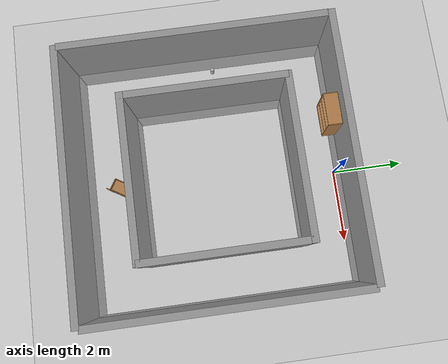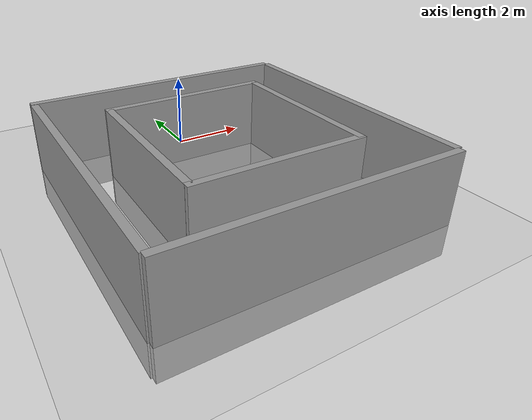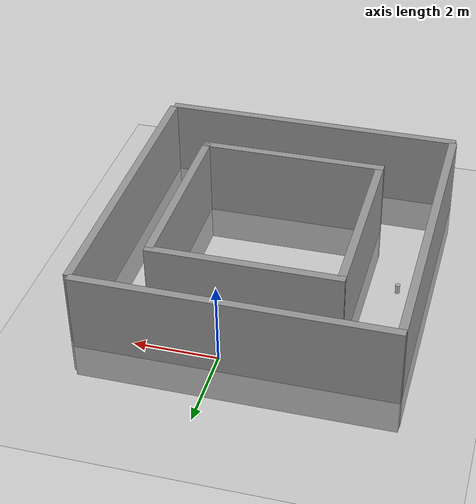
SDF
<sdf version="1.7">
 <world name="default">
  <light name="sun" type="directional">
   <pose>0 0 10 0 -0 0</pose>
   <diffuse>0.8 0.8 0.8 1</diffuse>
   <specular>0.2 0.2 0.2 1</specular>
   <attenuation>
    <range>1000</range>
    <constant>0.9</constant>
    <linear>0.01</linear>
    <quadratic>0.001</quadratic>
   </attenuation>
   <direction>-0.5 0.1 -0.9</direction>
   <spot><inner_angle>0</inner_angle><outer_angle>0</outer_angle><falloff>0</falloff></spot>
  </light>
  <model name="ground_plane">
   <static>1</static>
   <link name="link">
    <collision name="collision">
     <geometry><plane><normal>0 0 1</normal><size>100 100</size></plane></geometry>
     <surface>
      <contact><collide_bitmask>65535</collide_bitmask></contact>
      <friction><ode><mu>100</mu><mu2>50</mu2></ode></friction>
     </surface>
    </collision>
    <visual name="visual">
     <cast_shadows>0</cast_shadows>
     <geometry><plane><normal>0 0 1</normal><size>100 100</size></plane></geometry>
     <material>
      <script><uri>file://media/materials/scripts/gazebo.material</uri><name>Gazebo/Grey</name></script>
     </material>
    </visual>
   </link>
  </model>
  <gravity>0 0 -9.8</gravity>
  <magnetic_field>6e-06 2.3e-05 -4.2e-05</magnetic_field>
  <atmosphere type="adiabatic"/>
  <physics type="ode">
   <max_step_size>0.001</max_step_size>
   <real_time_factor>1</real_time_factor>
   <real_time_update_rate>1000</real_time_update_rate>
  </physics>
  <scene><ambient>0.4 0.4 0.4 1</ambient><background>0.7 0.7 0.7 1</background><shadows>1</shadows></scene>
  <audio><device>default</device></audio>
  <spherical_coordinates>
   <surface_model>EARTH_WGS84</surface_model>
   <latitude_deg>0</latitude_deg>
   <longitude_deg>0</longitude_deg>
   <elevation>0</elevation>
   <heading_deg>0</heading_deg>
  </spherical_coordinates>
  <model name="grey_wall">
   <static>1</static>
   <link name="link">
    <pose>0 0 1.4 0 -0 0</pose>
    <collision name="collision"><geometry><box><size>7.5 0.2 2.8</size></box></geometry></collision>
    <visual name="visual">
     <cast_shadows>0</cast_shadows>
     <geometry><box><size>7.5 0.2 2.8</size></box></geometry>
     <material>
      <script>
       <uri>model://grey_wall/materials/scripts</uri>
       <uri>model://grey_wall/materials/textures</uri>
       <name>vrc/grey_wall</name>
      </script>
     </material>
    </visual>
   </link>
   <pose>-4.11234 -3.50236 -0.882618 0 -0 1.5708</pose>
  </model>
  <model name="grey_wall_clone">
   <static>1</static>
   <link name="link">
    <pose>0 0 1.4 0 -0 0</pose>
    <collision name="collision"><geometry><box><size>7.5 0.2 2.8</size></box></geometry></collision>
    <visual name="visual">
     <cast_shadows>0</cast_shadows>
     <geometry><box><size>7.5 0.2 2.8</size></box></geometry>
     <material>
      <script>
       <uri>model://grey_wall/materials/scripts</uri>
       <uri>model://grey_wall/materials/textures</uri>
       <name>vrc/grey_wall</name>
      </script>
     </material>
    </visual>
   </link>
   <pose>-0.420642 -7.30869 -0.882618 0 0 -0.000576</pose>
  </model>
  <model name="grey_wall_clone_clone">
   <static>1</static>
   <link name="link">
    <pose>0 0 1.4 0 -0 0</pose>
    <collision name="collision"><geometry><box><size>7.5 0.2 2.8</size></box></geometry></collision>
    <visual name="visual">
     <cast_shadows>0</cast_shadows>
     <geometry><box><size>7.5 0.2 2.8</size></box></geometry>
     <material>
      <script>
       <uri>model://grey_wall/materials/scripts</uri>
       <uri>model://grey_wall/materials/textures</uri>
       <name>vrc/grey_wall</name>
      </script>
     </material>
    </visual>
   </link>
   <pose>-0.448186 0.313004 -0.875702 0 -0 0</pose>
  </model>
  <model name="grey_wall_clone_0">
   <static>1</static>
   <link name="link">
    <pose>0 0 1.4 0 -0 0</pose>
    <collision name="collision"><geometry><box><size>7.5 0.2 2.8</size></box></geometry></collision>
    <visual name="visual">
     <cast_shadows>0</cast_shadows>
     <geometry><box><size>7.5 0.2 2.8</size></box></geometry>
     <material>
      <script>
       <uri>model://grey_wall/materials/scripts</uri>
       <uri>model://grey_wall/materials/textures</uri>
       <name>vrc/grey_wall</name>
      </script>
     </material>
    </visual>
   </link>
   <pose>3.31769 -3.48579 -0.882618 0 -0 1.5708</pose>
  </model>
  <model name="grey_wall_clone_0_clone">
   <link name="link">
    <pose>0 0 1.4 0 -0 0</pose>
    <inertial>
     <inertia><ixx>0</ixx><ixy>0</ixy><ixz>0</ixz><iyy>0</iyy><iyz>0</iyz><izz>0</izz></inertia>
     <mass>0</mass>
    </inertial>
    <visual name="visual">
     <cast_shadows>0</cast_shadows>
     <geometry><box><size>4.5409 0.2 2.8</size></box></geometry>
     <material>
      <script>
       <uri>model://grey_wall/materials/scripts</uri>
       <uri>model://grey_wall/materials/textures</uri>
       <name>vrc/grey_wall</name>
      </script>
      <shader type="pixel"/>
     </material>
    </visual>
    <collision name="collision">
     <geometry><box><size>4.5409 0.2 2.8</size></box></geometry>
     <surface>
      <friction>
       <ode><mu>1</mu><mu2>1</mu2><fdir1>0 0 0</fdir1><slip1>0</slip1><slip2>0</slip2></ode>
       <torsional>
        <coefficient>1</coefficient>
        <patch_radius>0</patch_radius>
        <surface_radius>0</surface_radius>
        <use_patch_radius>1</use_patch_radius>
        <ode><slip>0</slip></ode>
       </torsional>
      </friction>
      <bounce><restitution_coefficient>0</restitution_coefficient><threshold>1e+06</threshold></bounce>
      <contact>
       <collide_without_contact>0</collide_without_contact>
       <collide_without_contact_bitmask>1</collide_without_contact_bitmask>
       <collide_bitmask>1</collide_bitmask>
       <ode>
        <soft_cfm>0</soft_cfm>
        <soft_erp>0.2</soft_erp>
        <kp>1e+13</kp>
        <kd>1</kd>
        <max_vel>0.01</max_vel>
        <min_depth>0</min_depth>
       </ode>
       <bullet>
        <split_impulse>1</split_impulse>
        <split_impulse_penetration_threshold>-0.01</split_impulse_penetration_threshold>
        <soft_cfm>0</soft_cfm>
        <soft_erp>0.2</soft_erp>
        <kp>1e+13</kp>
        <kd>1</kd>
       </bullet>
      </contact>
     </surface>
    </collision>
   </link>
   <static>1</static>
   <pose>1.92057 -3.42241 -0.882618 0 -0 1.5708</pose>
  </model>
  <model name="grey_wall_clone_0_clone_clone">
   <link name="link">
    <pose>0 0 1.4 0 -0 0</pose>
    <inertial>
     <inertia><ixx>0</ixx><ixy>0</ixy><ixz>0</ixz><iyy>0</iyy><iyz>0</iyz><izz>0</izz></inertia>
     <mass>0</mass>
    </inertial>
    <visual name="visual">
     <cast_shadows>0</cast_shadows>
     <geometry><box><size>4.5409 0.2 2.8</size></box></geometry>
     <material>
      <script>
       <uri>model://grey_wall/materials/scripts</uri>
       <uri>model://grey_wall/materials/textures</uri>
       <name>vrc/grey_wall</name>
      </script>
      <shader type="pixel"/>
     </material>
    </visual>
    <collision name="collision">
     <geometry><box><size>4.5409 0.2 2.8</size></box></geometry>
     <surface>
      <friction>
       <ode><mu>1</mu><mu2>1</mu2><fdir1>0 0 0</fdir1><slip1>0</slip1><slip2>0</slip2></ode>
       <torsional>
        <coefficient>1</coefficient>
        <patch_radius>0</patch_radius>
        <surface_radius>0</surface_radius>
        <use_patch_radius>1</use_patch_radius>
        <ode><slip>0</slip></ode>
       </torsional>
      </friction>
      <bounce><restitution_coefficient>0</restitution_coefficient><threshold>1e+06</threshold></bounce>
      <contact>
       <collide_without_contact>0</collide_without_contact>
       <collide_without_contact_bitmask>1</collide_without_contact_bitmask>
       <collide_bitmask>1</collide_bitmask>
       <ode>
        <soft_cfm>0</soft_cfm>
        <soft_erp>0.2</soft_erp>
        <kp>1e+13</kp>
        <kd>1</kd>
        <max_vel>0.01</max_vel>
        <min_depth>0</min_depth>
       </ode>
       <bullet>
        <split_impulse>1</split_impulse>
        <split_impulse_penetration_threshold>-0.01</split_impulse_penetration_threshold>
        <soft_cfm>0</soft_cfm>
        <soft_erp>0.2</soft_erp>
        <kp>1e+13</kp>
        <kd>1</kd>
       </bullet>
      </contact>
     </surface>
    </collision>
   </link>
   <static>1</static>
   <pose>-2.52427 -3.3849 -0.882618 0 -0 1.5708</pose>
  </model>
  <model name="grey_wall_clone_0_clone_clone_0">
   <link name="link">
    <pose>0 0 1.4 0 -0 0</pose>
    <inertial>
     <inertia><ixx>0</ixx><ixy>0</ixy><ixz>0</ixz><iyy>0</iyy><iyz>0</iyz><izz>0</izz></inertia>
     <mass>0</mass>
    </inertial>
    <visual name="visual">
     <cast_shadows>0</cast_shadows>
     <geometry><box><size>4.62976 0.2 2.8</size></box></geometry>
     <material>
      <script>
       <uri>model://grey_wall/materials/scripts</uri>
       <uri>model://grey_wall/materials/textures</uri>
       <name>vrc/grey_wall</name>
      </script>
      <shader type="pixel"/>
     </material>
    </visual>
    <collision name="collision">
     <geometry><box><size>4.62976 0.2 2.8</size></box></geometry>
     <surface>
      <friction>
       <ode><mu>1</mu><mu2>1</mu2><fdir1>0 0 0</fdir1><slip1>0</slip1><slip2>0</slip2></ode>
       <torsional>
        <coefficient>1</coefficient>
        <patch_radius>0</patch_radius>
        <surface_radius>0</surface_radius>
        <use_patch_radius>1</use_patch_radius>
        <ode><slip>0</slip></ode>
       </torsional>
      </friction>
      <bounce><restitution_coefficient>0</restitution_coefficient><threshold>1e+06</threshold></bounce>
      <contact>
       <collide_without_contact>0</collide_without_contact>
       <collide_without_contact_bitmask>1</collide_without_contact_bitmask>
       <collide_bitmask>1</collide_bitmask>
       <ode>
        <soft_cfm>0</soft_cfm>
        <soft_erp>0.2</soft_erp>
        <kp>1e+13</kp>
        <kd>1</kd>
        <max_vel>0.01</max_vel>
        <min_depth>0</min_depth>
       </ode>
       <bullet>
        <split_impulse>1</split_impulse>
        <split_impulse_penetration_threshold>-0.01</split_impulse_penetration_threshold>
        <soft_cfm>0</soft_cfm>
        <soft_erp>0.2</soft_erp>
        <kp>1e+13</kp>
        <kd>1</kd>
       </bullet>
      </contact>
     </surface>
    </collision>
   </link>
   <static>1</static>
   <pose>-0.30329 -1.12165 -0.882618 0 0 -3.13726</pose>
  </model>
  <model name="grey_wall_clone_0_clone_clone_0_clone">
   <link name="link">
    <pose>0 0 1.4 0 -0 0</pose>
    <inertial>
     <inertia><ixx>0</ixx><ixy>0</ixy><ixz>0</ixz><iyy>0</iyy><iyz>0</iyz><izz>0</izz></inertia>
     <mass>0</mass>
    </inertial>
    <visual name="visual">
     <cast_shadows>0</cast_shadows>
     <geometry><box><size>4.62976 0.2 2.8</size></box></geometry>
     <material>
      <script>
       <uri>model://grey_wall/materials/scripts</uri>
       <uri>model://grey_wall/materials/textures</uri>
       <name>vrc/grey_wall</name>
      </script>
      <shader type="pixel"/>
     </material>
    </visual>
    <collision name="collision">
     <geometry><box><size>4.62976 0.2 2.8</size></box></geometry>
     <surface>
      <friction>
       <ode><mu>1</mu><mu2>1</mu2><fdir1>0 0 0</fdir1><slip1>0</slip1><slip2>0</slip2></ode>
       <torsional>
        <coefficient>1</coefficient>
        <patch_radius>0</patch_radius>
        <surface_radius>0</surface_radius>
        <use_patch_radius>1</use_patch_radius>
        <ode><slip>0</slip></ode>
       </torsional>
      </friction>
      <bounce><restitution_coefficient>0</restitution_coefficient><threshold>1e+06</threshold></bounce>
      <contact>
       <collide_without_contact>0</collide_without_contact>
       <collide_without_contact_bitmask>1</collide_without_contact_bitmask>
       <collide_bitmask>1</collide_bitmask>
       <ode>
        <soft_cfm>0</soft_cfm>
        <soft_erp>0.2</soft_erp>
        <kp>1e+13</kp>
        <kd>1</kd>
        <max_vel>0.01</max_vel>
        <min_depth>0</min_depth>
       </ode>
       <bullet>
        <split_impulse>1</split_impulse>
        <split_impulse_penetration_threshold>-0.01</split_impulse_penetration_threshold>
        <soft_cfm>0</soft_cfm>
        <soft_erp>0.2</soft_erp>
        <kp>1e+13</kp>
        <kd>1</kd>
       </bullet>
      </contact>
     </surface>
    </collision>
   </link>
   <static>1</static>
   <pose>-0.307748 -5.66578 -0.882618 0 0 -3.13726</pose>
  </model>
  <model name="beer">
   <link name="link">
    <pose>0 0 0.115 0 -0 0</pose>
    <inertial>
     <mass>0.39</mass>
     <inertia><ixx>0.00058</ixx><ixy>0</ixy><ixz>0</ixz><iyy>0.00058</iyy><iyz>0</iyz><izz>0.00019</izz></inertia>
    </inertial>
    <collision name="collision">
     <geometry><cylinder><radius>0.055</radius><length>0.23</length></cylinder></geometry>
    </collision>
    <visual name="visual">
     <geometry><cylinder><radius>0.055</radius><length>0.23</length></cylinder></geometry>
     <material>
      <script>
       <uri>model://beer/materials/scripts</uri>
       <uri>model://beer/materials/textures</uri>
       <name>Beer/Diffuse</name>
      </script>
     </material>
    </visual>
   </link>
   <pose>-3.50391 -3.13667 0.152142 -1e-06 2.8e-05 0.000458</pose>
  </model>
  <model name="bookshelf">
   <static>1</static>
   <link name="link">
    <inertial><mass>1</mass></inertial>
    <collision name="back">
     <pose>0 0.005 0.6 0 -0 0</pose>
     <geometry><box><size>0.9 0.01 1.2</size></box></geometry>
    </collision>
    <visual name="visual1">
     <pose>0 0.005 0.6 0 -0 0</pose>
     <geometry><box><size>0.9 0.01 1.2</size></box></geometry>
     <material>
      <script><uri>file://media/materials/scripts/gazebo.material</uri><name>Gazebo/Wood</name></script>
     </material>
    </visual>
    <collision name="left_side">
     <pose>0.45 -0.195 0.6 0 -0 0</pose>
     <geometry><box><size>0.02 0.4 1.2</size></box></geometry>
    </collision>
    <visual name="visual2">
     <pose>0.45 -0.195 0.6 0 -0 0</pose>
     <geometry><box><size>0.02 0.4 1.2</size></box></geometry>
     <material>
      <script><uri>file://media/materials/scripts/gazebo.material</uri><name>Gazebo/Wood</name></script>
     </material>
    </visual>
    <collision name="right_side">
     <pose>-0.45 -0.195 0.6 0 -0 0</pose>
     <geometry><box><size>0.02 0.4 1.2</size></box></geometry>
    </collision>
    <visual name="visual3">
     <pose>-0.45 -0.195 0.6 0 -0 0</pose>
     <geometry><box><size>0.02 0.4 1.2</size></box></geometry>
     <material>
      <script><uri>file://media/materials/scripts/gazebo.material</uri><name>Gazebo/Wood</name></script>
     </material>
    </visual>
    <collision name="bottom">
     <pose>0 -0.195 0.03 0 -0 0</pose>
     <geometry><box><size>0.88 0.4 0.06</size></box></geometry>
    </collision>
    <visual name="visual4">
     <pose>0 -0.195 0.03 0 -0 0</pose>
     <geometry><box><size>0.88 0.4 0.06</size></box></geometry>
     <material>
      <script><uri>file://media/materials/scripts/gazebo.material</uri><name>Gazebo/Wood</name></script>
     </material>
    </visual>
    <collision name="top">
     <pose>0 -0.195 1.19 0 -0 0</pose>
     <geometry><box><size>0.88 0.4 0.02</size></box></geometry>
    </collision>
    <visual name="visual5">
     <pose>0 -0.195 1.19 0 -0 0</pose>
     <geometry><box><size>0.88 0.4 0.02</size></box></geometry>
     <material>
      <script><uri>file://media/materials/scripts/gazebo.material</uri><name>Gazebo/Wood</name></script>
     </material>
    </visual>
    <collision name="low_shelf">
     <pose>0 -0.195 0.43 0 -0 0</pose>
     <geometry><box><size>0.88 0.4 0.02</size></box></geometry>
    </collision>
    <visual name="visual6">
     <pose>0 -0.195 0.43 0 -0 0</pose>
     <geometry><box><size>0.88 0.4 0.02</size></box></geometry>
     <material>
      <script><uri>file://media/materials/scripts/gazebo.material</uri><name>Gazebo/Wood</name></script>
     </material>
    </visual>
    <collision name="high_shelf">
     <pose>0 -0.195 0.8 0 -0 0</pose>
     <geometry><box><size>0.88 0.4 0.02</size></box></geometry>
    </collision>
    <visual name="visual7">
     <pose>0 -0.195 0.8 0 -0 0</pose>
     <geometry><box><size>0.88 0.4 0.02</size></box></geometry>
     <material>
      <script><uri>file://media/materials/scripts/gazebo.material</uri><name>Gazebo/Wood</name></script>
     </material>
    </visual>
   </link>
   <pose>-1.54819 0.203004 0.190965 0 -0 0</pose>
  </model>
  <model name="wooden_case">
   <link name="base">
    <pose>0 0 0.024 0 -0 0</pose>
    <inertial>
     <pose>-0.022184 0 0.171592 0 -0 0</pose>
     <mass>3.96264</mass>
     <inertia>
      <ixx>0.213536</ixx>
      <ixy>0</ixy>
      <ixz>0.000779377</ixz>
      <iyy>0.0708943</iyy>
      <iyz>0</iyz>
      <izz>0.154604</izz>
     </inertia>
    </inertial>
    <collision name="collision_back">
     <pose>-0.053975 0 0.1778 0 -0 0</pose>
     <geometry><box><size>0.01905 0.5461 0.3175</size></box></geometry>
     <surface>
      <contact>
       <poissons_ratio>0.347</poissons_ratio>
       <elastic_modulus>8.8e+09</elastic_modulus>
       <ode><kp>100000</kp><kd>100</kd><max_vel>100</max_vel><min_depth>0.001</min_depth></ode>
      </contact>
      <friction>
       <torsional>
        <coefficient>1</coefficient>
        <use_patch_radius>0</use_patch_radius>
        <surface_radius>0.01</surface_radius>
       </torsional>
      </friction>
     </surface>
    </collision>
    <visual name="visual_back">
     <pose>-0.053975 0 0.1778 0 -0 0</pose>
     <geometry><box><size>0.01905 0.5461 0.3175</size></box></geometry>
     <material>
      <script><uri>file://media/materials/scripts/gazebo.material</uri><name>Gazebo/Wood</name></script>
     </material>
    </visual>
    <collision name="collision_bottom">
     <pose>0 0 0.009525 0 -0 0</pose>
     <geometry><box><size>0.127 0.5842 0.01905</size></box></geometry>
     <surface>
      <contact>
       <poissons_ratio>0.347</poissons_ratio>
       <elastic_modulus>8.8e+09</elastic_modulus>
       <ode><kp>100000</kp><kd>100</kd><max_vel>100</max_vel><min_depth>0.001</min_depth></ode>
      </contact>
      <friction>
       <torsional>
        <coefficient>1</coefficient>
        <use_patch_radius>0</use_patch_radius>
        <surface_radius>0.01</surface_radius>
       </torsional>
      </friction>
     </surface>
    </collision>
    <visual name="visual_bottom">
     <pose>0 0 0.009525 0 -0 0</pose>
     <geometry><box><size>0.127 0.5842 0.01905</size></box></geometry>
     <material>
      <script><uri>file://media/materials/scripts/gazebo.material</uri><name>Gazebo/Wood</name></script>
     </material>
    </visual>
    <collision name="collision_top">
     <pose>0 0 0.346075 0 -0 0</pose>
     <geometry><box><size>0.127 0.5842 0.01905</size></box></geometry>
     <surface>
      <contact>
       <poissons_ratio>0.347</poissons_ratio>
       <elastic_modulus>8.8e+09</elastic_modulus>
       <ode><kp>100000</kp><kd>100</kd><max_vel>100</max_vel><min_depth>0.001</min_depth></ode>
      </contact>
      <friction>
       <torsional>
        <coefficient>1</coefficient>
        <use_patch_radius>0</use_patch_radius>
        <surface_radius>0.01</surface_radius>
       </torsional>
      </friction>
     </surface>
    </collision>
    <visual name="visual_top">
     <pose>0 0 0.346075 0 -0 0</pose>
     <geometry><box><size>0.127 0.5842 0.01905</size></box></geometry>
     <material>
      <script><uri>file://media/materials/scripts/gazebo.material</uri><name>Gazebo/Wood</name></script>
     </material>
    </visual>
    <collision name="collision_left">
     <pose>0 -0.282575 0.1778 0 -0 0</pose>
     <geometry><box><size>0.127 0.01905 0.3175</size></box></geometry>
     <surface>
      <contact>
       <poissons_ratio>0.347</poissons_ratio>
       <elastic_modulus>8.8e+09</elastic_modulus>
       <ode><kp>100000</kp><kd>100</kd><max_vel>100</max_vel><min_depth>0.001</min_depth></ode>
      </contact>
      <friction>
       <torsional>
        <coefficient>1</coefficient>
        <use_patch_radius>0</use_patch_radius>
        <surface_radius>0.01</surface_radius>
       </torsional>
      </friction>
     </surface>
    </collision>
    <visual name="visual_left">
     <pose>0 -0.282575 0.1778 0 -0 0</pose>
     <geometry><box><size>0.127 0.01905 0.3175</size></box></geometry>
     <material>
      <script><uri>file://media/materials/scripts/gazebo.material</uri><name>Gazebo/Wood</name></script>
     </material>
    </visual>
    <collision name="collision_right">
     <pose>0 0.282575 0.1778 0 -0 0</pose>
     <geometry><box><size>0.127 0.01905 0.3175</size></box></geometry>
     <surface>
      <contact>
       <poissons_ratio>0.347</poissons_ratio>
       <elastic_modulus>8.8e+09</elastic_modulus>
       <ode><kp>100000</kp><kd>100</kd><max_vel>100</max_vel><min_depth>0.001</min_depth></ode>
      </contact>
      <friction>
       <torsional>
        <coefficient>1</coefficient>
        <use_patch_radius>0</use_patch_radius>
        <surface_radius>0.01</surface_radius>
       </torsional>
      </friction>
     </surface>
    </collision>
    <visual name="visual_right">
     <pose>0 0.282575 0.1778 0 -0 0</pose>
     <geometry><box><size>0.127 0.01905 0.3175</size></box></geometry>
     <material>
      <script><uri>file://media/materials/scripts/gazebo.material</uri><name>Gazebo/Wood</name></script>
     </material>
    </visual>
    <collision name="collision_block_left">
     <pose>0.0095 -0.2151 -0.012 0 -0 0</pose>
     <geometry><box><size>0.108 0.05 0.024</size></box></geometry>
     <surface>
      <contact>
       <poissons_ratio>0.347</poissons_ratio>
       <elastic_modulus>8.8e+09</elastic_modulus>
       <ode><kp>100000</kp><kd>100</kd><max_vel>100</max_vel><min_depth>0.001</min_depth></ode>
      </contact>
      <friction>
       <torsional>
        <coefficient>1</coefficient>
        <use_patch_radius>0</use_patch_radius>
        <surface_radius>0.01</surface_radius>
       </torsional>
      </friction>
     </surface>
    </collision>
    <visual name="visual_block_left">
     <pose>0.0095 -0.2151 -0.012 0 -0 0</pose>
     <geometry><box><size>0.108 0.05 0.024</size></box></geometry>
     <material>
      <script><uri>file://media/materials/scripts/gazebo.material</uri><name>Gazebo/Wood</name></script>
     </material>
    </visual>
    <collision name="collision_block_right">
     <pose>0.0095 0.2151 -0.012 0 -0 0</pose>
     <geometry><box><size>0.108 0.05 0.024</size></box></geometry>
     <surface>
      <contact>
       <poissons_ratio>0.347</poissons_ratio>
       <elastic_modulus>8.8e+09</elastic_modulus>
       <ode><kp>100000</kp><kd>100</kd><max_vel>100</max_vel><min_depth>0.001</min_depth></ode>
      </contact>
      <friction>
       <torsional>
        <coefficient>1</coefficient>
        <use_patch_radius>0</use_patch_radius>
        <surface_radius>0.01</surface_radius>
       </torsional>
      </friction>
     </surface>
    </collision>
    <visual name="visual_block_right">
     <pose>0.0095 0.2151 -0.012 0 -0 0</pose>
     <geometry><box><size>0.108 0.05 0.024</size></box></geometry>
     <material>
      <script><uri>file://media/materials/scripts/gazebo.material</uri><name>Gazebo/Wood</name></script>
     </material>
    </visual>
   </link>
   <link name="lid">
    <pose>0.243775 0 0.009525 0 -0 0</pose>
    <inertial>
     <mass>1.97874</mass>
     <inertia>
      <ixx>0.0563367</ixx>
      <ixy>0</ixy>
      <ixz>0</ixz>
      <iyy>0.020911</iyy>
      <iyz>0</iyz>
      <izz>0.0771281</izz>
     </inertia>
    </inertial>
    <collision name="collision">
     <geometry><box><size>0.3556 0.5842 0.01905</size></box></geometry>
     <surface>
      <contact>
       <poissons_ratio>0.347</poissons_ratio>
       <elastic_modulus>8.8e+09</elastic_modulus>
       <ode><kp>100000</kp><kd>100</kd><max_vel>100</max_vel><min_depth>0.001</min_depth></ode>
      </contact>
      <friction>
       <torsional>
        <coefficient>1</coefficient>
        <use_patch_radius>0</use_patch_radius>
        <surface_radius>0.01</surface_radius>
       </torsional>
      </friction>
     </surface>
    </collision>
    <visual name="visual">
     <geometry><box><size>0.3556 0.5842 0.01905</size></box></geometry>
     <material>
      <script><uri>file://media/materials/scripts/gazebo.material</uri><name>Gazebo/Wood</name></script>
     </material>
    </visual>
    <visual name="tee_nut_1">
     <pose>0.122 -0.216 0 0 -0 0</pose>
     <geometry><cylinder><radius>0.00635</radius><length>0.0192405</length></cylinder></geometry>
     <material>
      <script><uri>file://media/materials/scripts/gazebo.material</uri><name>Gazebo/Grey</name></script>
     </material>
    </visual>
    <visual name="tee_nut_2">
     <pose>0.122 -0.088 0 0 -0 0</pose>
     <geometry><cylinder><radius>0.00635</radius><length>0.0192405</length></cylinder></geometry>
     <material>
      <script><uri>file://media/materials/scripts/gazebo.material</uri><name>Gazebo/Grey</name></script>
     </material>
    </visual>
    <visual name="tee_nut_3">
     <pose>0.122 0.088 0 0 -0 0</pose>
     <geometry><cylinder><radius>0.00635</radius><length>0.0192405</length></cylinder></geometry>
     <material>
      <script><uri>file://media/materials/scripts/gazebo.material</uri><name>Gazebo/Grey</name></script>
     </material>
    </visual>
    <visual name="tee_nut_4">
     <pose>0.122 0.216 0 0 -0 0</pose>
     <geometry><cylinder><radius>0.00635</radius><length>0.0192405</length></cylinder></geometry>
     <material>
      <script><uri>file://media/materials/scripts/gazebo.material</uri><name>Gazebo/Grey</name></script>
     </material>
    </visual>
   </link>
   <joint name="lid_hinge" type="revolute">
    <pose>-0.1778 0 0.01905 0 -0 0</pose>
    <parent>base</parent>
    <child>lid</child>
    <axis>
     <xyz>0 1 0</xyz>
     <limit><upper>0.523599</upper><lower>-1.5708</lower></limit>
     <dynamics><spring_reference>0</spring_reference><spring_stiffness>0</spring_stiffness></dynamics>
    </axis>
   </joint>
   <pose>-0.159391 -6.28468 0.214614 -0.260697 -1.57079 -0.281377</pose>
  </model>
 </world>
</sdf>
